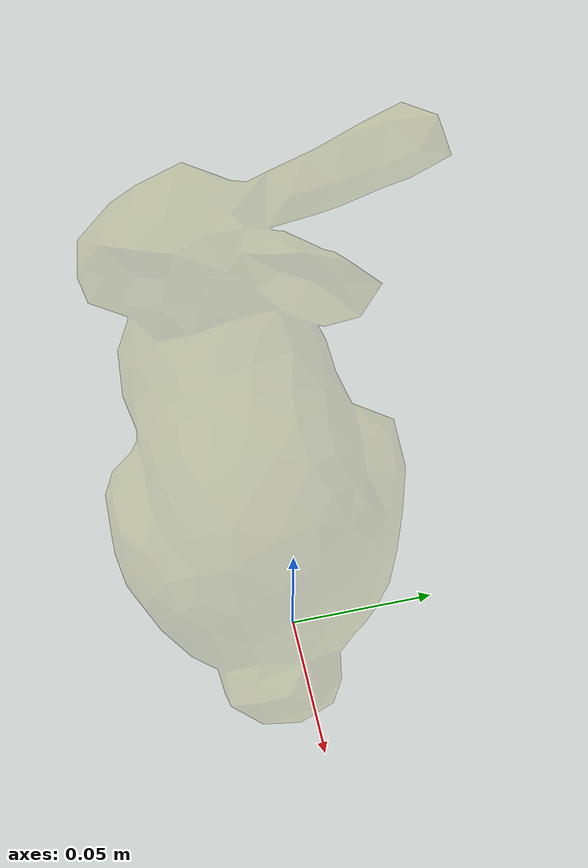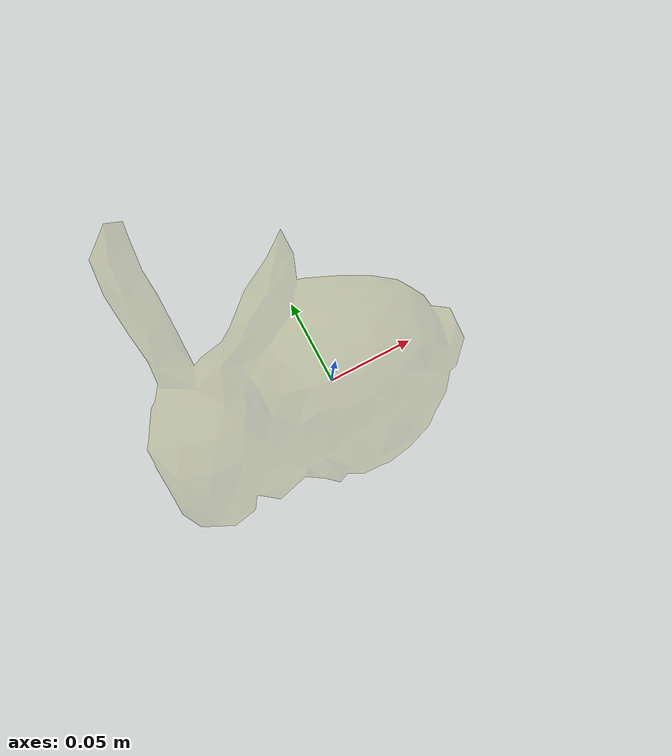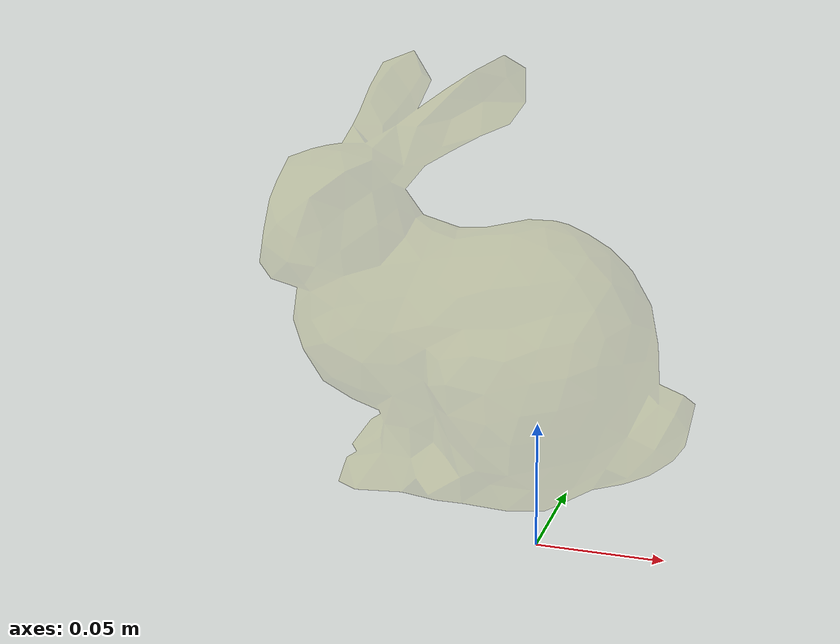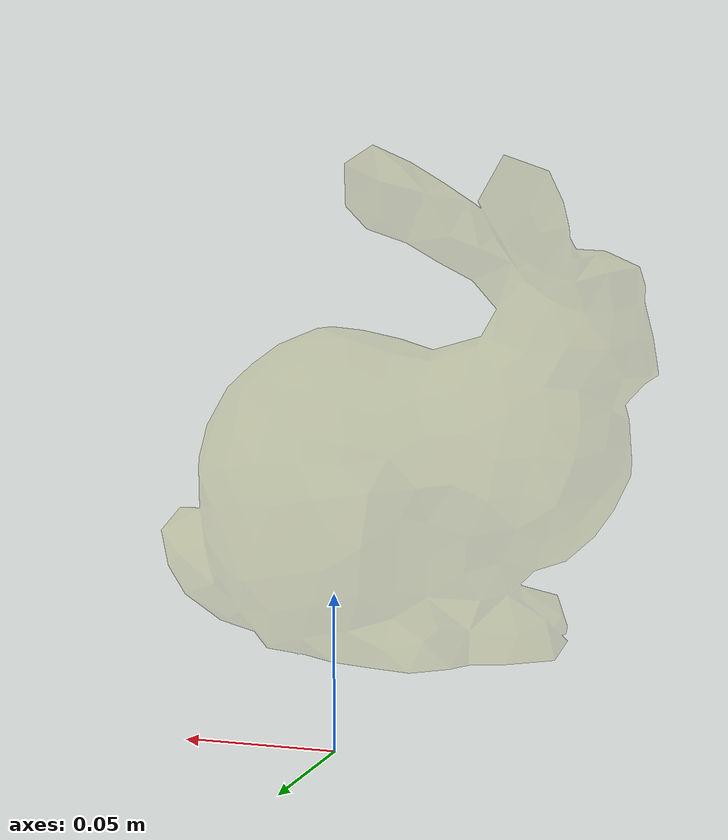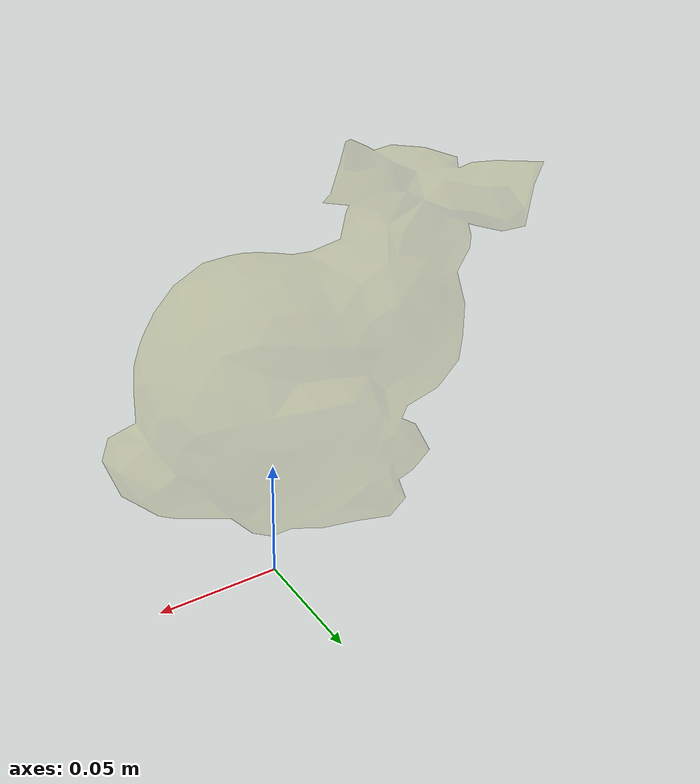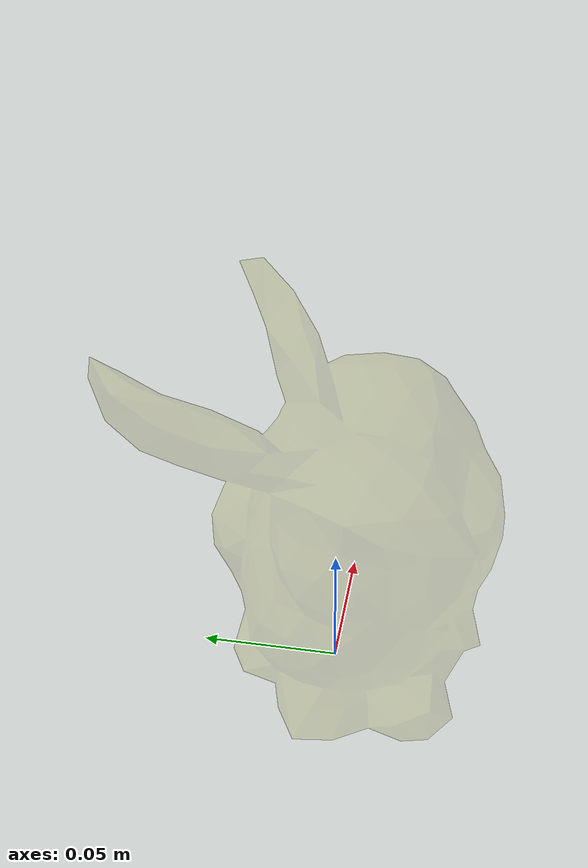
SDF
<?xml version="1.0"?>
<sdf version="1.7" xmlns:drake="drake.mit.edu">
  <model name="yellow_bell_pepper_no_stem">
    <link name="yellow_bell_pepper_no_stem">
      <pose>0 0 0 0 0 0</pose>
      <inertial>
        <pose>0.000537 -0.00272 0.0384 0 0 0</pose>
        <mass>0.159</mass>
        <inertia>
          <ixx> 0.000101</ixx>
          <ixy>-0.000001</ixy>
          <ixz>-0.000004</ixz>
          <iyy> 0.000105</iyy>
          <iyz> 0.000007</iyz>
          <izz> 0.000107</izz>
        </inertia>
      </inertial>
      <visual name="yellow_bell_pepper_no_stem">
        <pose>0 0 0 0 0 0</pose>
        <geometry>
          <mesh>
            <uri>bunny.obj</uri>
            <scale>1 1 1</scale>
          </mesh>
        </geometry>
        <material>
          <diffuse>0.5 0.5 0 0.2</diffuse>
        </material>      </visual>
      <collision name="collision">
        <pose>0 0 0 0 0 0</pose>
        <geometry>
          <mesh>
            <uri>bunny_fixed.vtk</uri>
            <scale>1 1 1</scale>
          </mesh>
        </geometry>
        <drake:proximity_properties>
          <drake:compliant_hydroelastic/>
          <drake:hydroelastic_modulus>5.0e5</drake:hydroelastic_modulus>
          <!-- Most shapes (capsule, cylinder, ellipsoid, sphere) need
            drake:mesh_resolution_hint, but the resolution hint is no-op
            for the mesh geometry. That's why we do not set it here. -->
          <drake:hunt_crossley_dissipation>10</drake:hunt_crossley_dissipation>
          <!-- Both mu_dynamic and mu_static are used in Continuous system.
            Only mu_dynamic is used in Discrete system.  -->
          <drake:mu_dynamic> 1 </drake:mu_dynamic>
          <drake:mu_static> 1 </drake:mu_static>
        </drake:proximity_properties>
      </collision>
    </link>
    <frame name="origin">
      <pose relative_to="yellow_bell_pepper_no_stem">0 0 0 0 0 0</pose>
    </frame>
    <frame name="flush_bottom_center__z_up">
      <pose relative_to="yellow_bell_pepper_no_stem">0 0 0 0 0 0</pose>
    </frame>
  </model>
</sdf>
